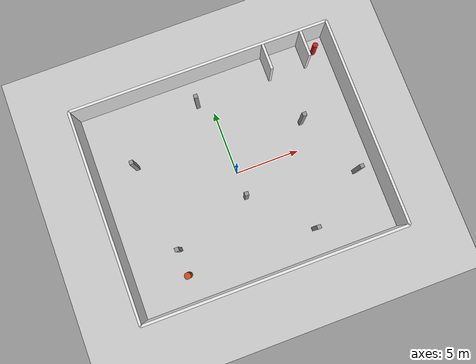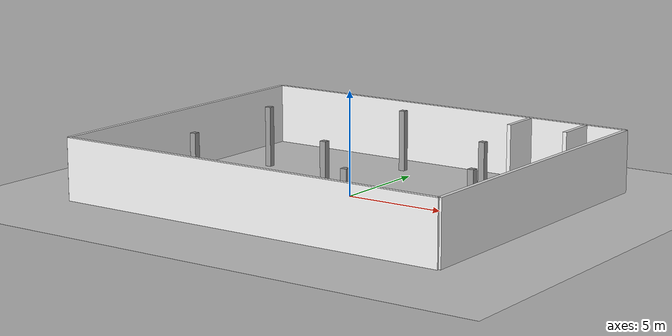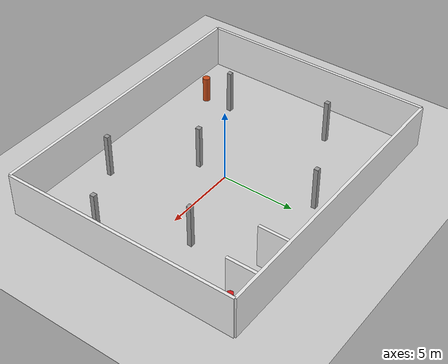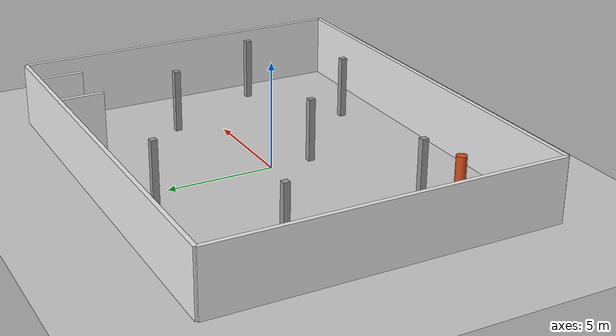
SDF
<?xml version="1.0"?>
<sdf version="1.6">
  <world name="wide_area">

    <physics name="default_physics" default="0" type="ode">
      <max_step_size>0.001</max_step_size>
      <real_time_factor>1.0</real_time_factor>
      <real_time_update_rate>1000</real_time_update_rate>
    </physics>

    <plugin name="gazebo_ros_state" filename="libgazebo_ros_state.so">
      <ros><namespace>/gazebo</namespace></ros>
      <update_rate>10.0</update_rate>
    </plugin>

    <light name="sun" type="directional">
      <cast_shadows>true</cast_shadows>
      <pose>0 0 10 0 0 0</pose>
      <diffuse>0.9 0.9 0.9 1</diffuse>
      <specular>0.3 0.3 0.3 1</specular>
      <direction>-0.5 0.1 -0.9</direction>
    </light>

    <model name="ground_plane">
      <static>true</static>
      <link name="link">
        <collision name="collision">
          <geometry><plane><normal>0 0 1</normal></plane></geometry>
          <surface><friction><ode><mu>100</mu><mu2>50</mu2></ode></friction></surface>
        </collision>
        <visual name="visual">
          <cast_shadows>false</cast_shadows>
          <geometry><plane><normal>0 0 1</normal><size>30 30</size></plane></geometry>
          <material><script><name>Gazebo/Grey</name></script></material>
        </visual>
      </link>
    </model>

    <!-- 外周壁 (内寸 20.0 × 16.0) -->
    <model name="wall_south">
      <static>true</static><pose>0 -8.1 1.5 0 0 0</pose>
      <link name="link">
        <collision name="col"><geometry><box><size>20.2 0.2 3.0</size></box></geometry></collision>
        <visual name="vis"><geometry><box><size>20.2 0.2 3.0</size></box></geometry>
          <material><script><name>Gazebo/White</name></script></material></visual>
      </link>
    </model>
    <model name="wall_north">
      <static>true</static><pose>0 8.1 1.5 0 0 0</pose>
      <link name="link">
        <collision name="col"><geometry><box><size>20.2 0.2 3.0</size></box></geometry></collision>
        <visual name="vis"><geometry><box><size>20.2 0.2 3.0</size></box></geometry>
          <material><script><name>Gazebo/White</name></script></material></visual>
      </link>
    </model>
    <model name="wall_west">
      <static>true</static><pose>-10.1 0 1.5 0 0 0</pose>
      <link name="link">
        <collision name="col"><geometry><box><size>0.2 16.2 3.0</size></box></geometry></collision>
        <visual name="vis"><geometry><box><size>0.2 16.2 3.0</size></box></geometry>
          <material><script><name>Gazebo/White</name></script></material></visual>
      </link>
    </model>
    <model name="wall_east">
      <static>true</static><pose>10.1 0 1.5 0 0 0</pose>
      <link name="link">
        <collision name="col"><geometry><box><size>0.2 16.2 3.0</size></box></geometry></collision>
        <visual name="vis"><geometry><box><size>0.2 16.2 3.0</size></box></geometry>
          <material><script><name>Gazebo/White</name></script></material></visual>
      </link>
    </model>

    <!-- アルコーブ (北東の壁凹み特徴): 北壁から南へ突き出す短壁 2 枚 -->
    <model name="alcove_west">
      <static>true</static><pose>5.0 7.0 1.5 0 0 0</pose>
      <link name="link">
        <collision name="col"><geometry><box><size>0.2 2.0 3.0</size></box></geometry></collision>
        <visual name="vis"><geometry><box><size>0.2 2.0 3.0</size></box></geometry>
          <material><script><name>Gazebo/White</name></script></material></visual>
      </link>
    </model>
    <model name="alcove_east">
      <static>true</static><pose>8.0 7.0 1.5 0 0 0</pose>
      <link name="link">
        <collision name="col"><geometry><box><size>0.2 2.0 3.0</size></box></geometry></collision>
        <visual name="vis"><geometry><box><size>0.2 2.0 3.0</size></box></geometry>
          <material><script><name>Gazebo/White</name></script></material></visual>
      </link>
    </model>

    <!-- 柱 (0.3 m 角・高さ 3 m)。非対称配置・間隔 8 m 以内 -->
    <model name="pillar_01">
      <static>true</static><pose>-6.0 -4.0 1.5 0 0 0</pose>
      <link name="link">
        <collision name="col"><geometry><box><size>0.3 0.3 3.0</size></box></geometry></collision>
        <visual name="vis"><geometry><box><size>0.3 0.3 3.0</size></box></geometry>
          <material><script><name>Gazebo/Grey</name></script></material></visual>
      </link>
    </model>
    <model name="pillar_02">
      <static>true</static><pose>-7.0 3.0 1.5 0 0 0</pose>
      <link name="link">
        <collision name="col"><geometry><box><size>0.3 0.3 3.0</size></box></geometry></collision>
        <visual name="vis"><geometry><box><size>0.3 0.3 3.0</size></box></geometry>
          <material><script><name>Gazebo/Grey</name></script></material></visual>
      </link>
    </model>
    <model name="pillar_03">
      <static>true</static><pose>-1.0 6.0 1.5 0 0 0</pose>
      <link name="link">
        <collision name="col"><geometry><box><size>0.3 0.3 3.0</size></box></geometry></collision>
        <visual name="vis"><geometry><box><size>0.3 0.3 3.0</size></box></geometry>
          <material><script><name>Gazebo/Grey</name></script></material></visual>
      </link>
    </model>
    <model name="pillar_04">
      <static>true</static><pose>0.0 -2.0 1.5 0 0 0</pose>
      <link name="link">
        <collision name="col"><geometry><box><size>0.3 0.3 3.0</size></box></geometry></collision>
        <visual name="vis"><geometry><box><size>0.3 0.3 3.0</size></box></geometry>
          <material><script><name>Gazebo/Grey</name></script></material></visual>
      </link>
    </model>
    <model name="pillar_05">
      <static>true</static><pose>4.0 -6.0 1.5 0 0 0</pose>
      <link name="link">
        <collision name="col"><geometry><box><size>0.3 0.3 3.0</size></box></geometry></collision>
        <visual name="vis"><geometry><box><size>0.3 0.3 3.0</size></box></geometry>
          <material><script><name>Gazebo/Grey</name></script></material></visual>
      </link>
    </model>
    <model name="pillar_06">
      <static>true</static><pose>6.0 2.0 1.5 0 0 0</pose>
      <link name="link">
        <collision name="col"><geometry><box><size>0.3 0.3 3.0</size></box></geometry></collision>
        <visual name="vis"><geometry><box><size>0.3 0.3 3.0</size></box></geometry>
          <material><script><name>Gazebo/Grey</name></script></material></visual>
      </link>
    </model>
    <model name="pillar_07">
      <static>true</static><pose>8.5 -3.0 1.5 0 0 0</pose>
      <link name="link">
        <collision name="col"><geometry><box><size>0.3 0.3 3.0</size></box></geometry></collision>
        <visual name="vis"><geometry><box><size>0.3 0.3 3.0</size></box></geometry>
          <material><script><name>Gazebo/Grey</name></script></material></visual>
      </link>
    </model>

    <!-- 試験員模擬シリンダー (person_mover が動かす) -->
    <model name="inspector">
      <static>true</static>
      <pose>-6.0 -6.0 0.9 0 0 0</pose>
      <link name="link">
        <collision name="col">
          <geometry><cylinder><radius>0.25</radius><length>1.8</length></cylinder></geometry>
        </collision>
        <visual name="vis">
          <geometry><cylinder><radius>0.25</radius><length>1.8</length></cylinder></geometry>
          <material>
            <ambient>0.8 0.3 0.1 1</ambient>
            <diffuse>0.8 0.3 0.1 1</diffuse>
          </material>
        </visual>
      </link>
    </model>

    <!-- 回避検証用の動く障害物 (デフォルトでは obstacle_mover 無効・待機位置に静置) -->
    <model name="wanderer">
      <pose>9.0 7.0 0.85 0 0 0</pose>
      <link name="link">
        <inertial><mass>70.0</mass>
          <inertia><ixx>1.0</ixx><ixy>0</ixy><ixz>0</ixz>
                   <iyy>1.0</iyy><iyz>0</iyz><izz>0.3</izz></inertia>
        </inertial>
        <collision name="col">
          <geometry><cylinder><radius>0.2</radius><length>1.7</length></cylinder></geometry>
        </collision>
        <visual name="vis">
          <geometry><cylinder><radius>0.2</radius><length>1.7</length></cylinder></geometry>
          <material>
            <ambient>0.85 0.1 0.1 1</ambient>
            <diffuse>0.85 0.1 0.1 1</diffuse>
          </material>
        </visual>
      </link>
    </model>

  </world>
</sdf>
